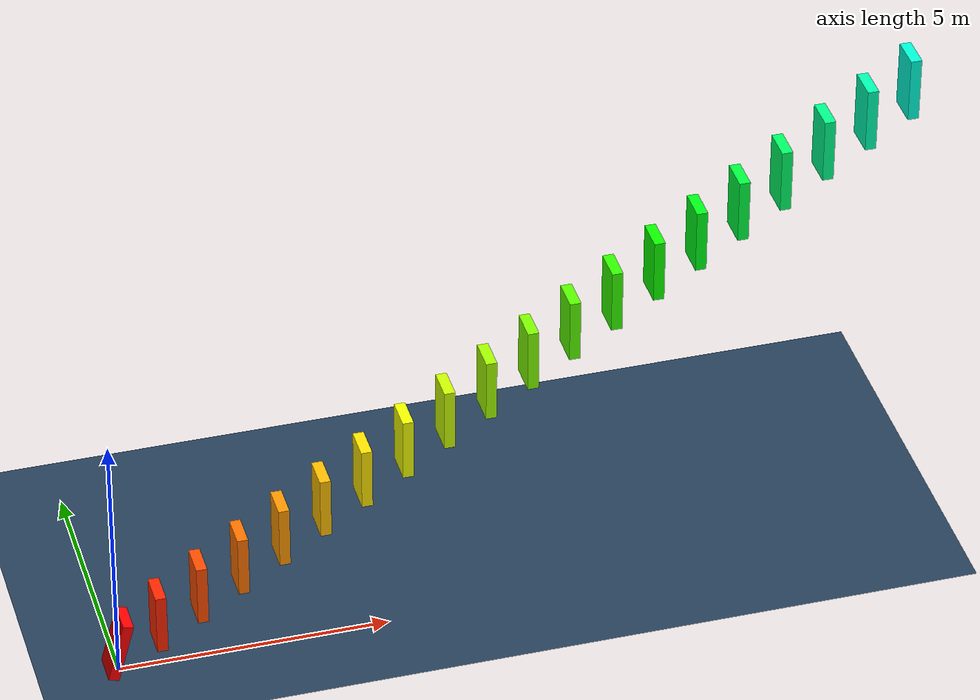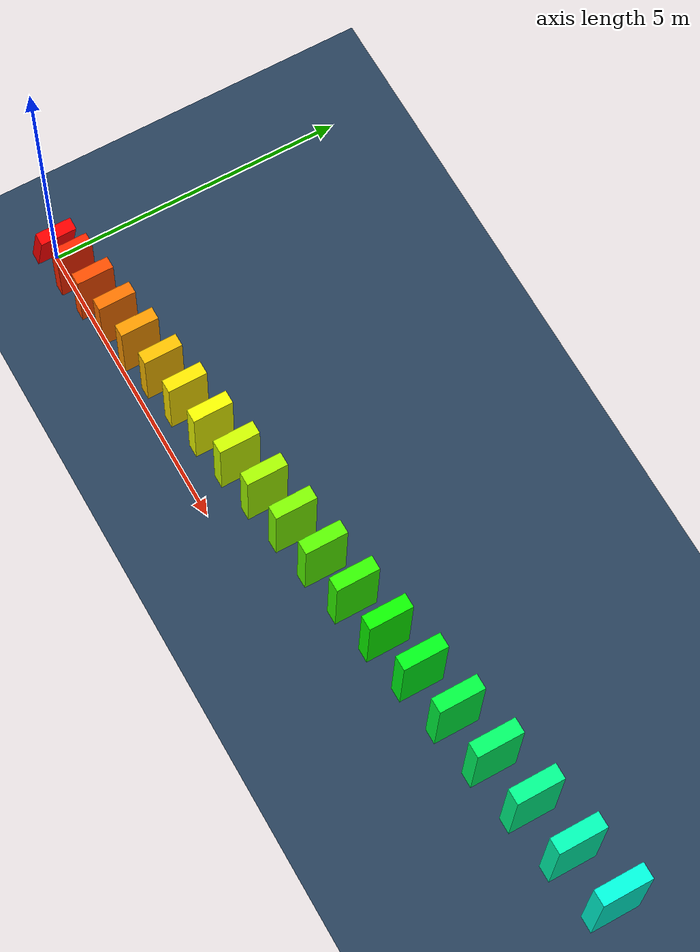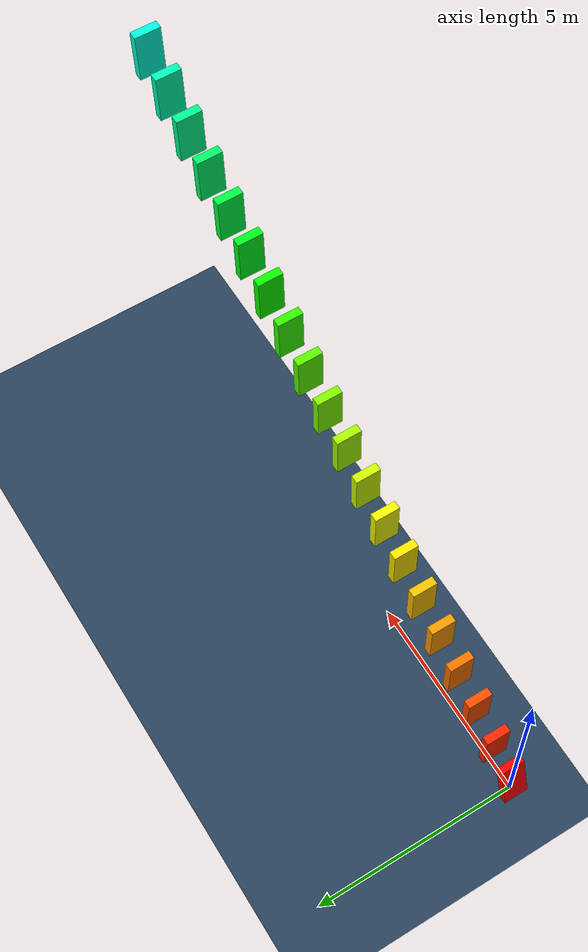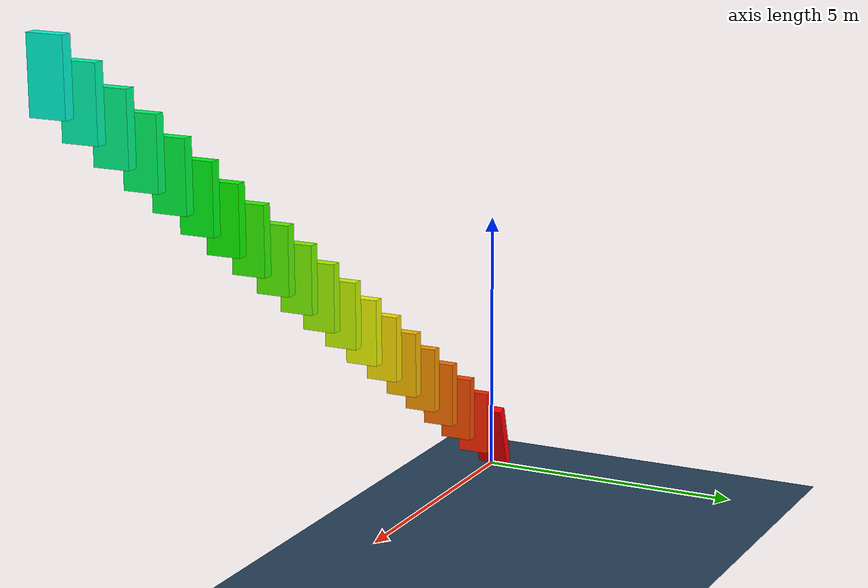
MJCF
<mujoco>
  <visual>
    <headlight diffuse="0.6 0.6 0.6" ambient="0.1 0.1 0.1" specular="0 0 0"/>
    <rgba haze="0.15 0.25 0.35 1"/>
    <global azimuth="120" elevation="-20"/>
  </visual>
  <asset>
    <texture type="skybox" builtin="gradient" rgb1="0.3 0.5 0.7" rgb2="0 0 0" width="512" height="3072"/>
    <texture type="2d" name="groundplane" builtin="checker" mark="edge" rgb1="0.2 0.3 0.4" rgb2="0.1 0.2 0.3" markrgb="0.8 0.8 0.8" width="300" height="300"/>
    <material name="groundplane" texture="groundplane" texuniform="true" texrepeat="5 5" reflectance="0.2"/>
  </asset>
  <worldbody>
    <light pos="0 0 1.5" dir="0 0 -1" directional="true"/>
    <geom name="floor" size="0 0 0.05" type="plane" material="groundplane"/>
    <body pos="0.0000 0.0000 0.6000" euler="0 15.0 0.0">
      <geom type="box" size="0.1000 0.3000 0.6000" rgba="1.000 0.000 0.000 1"/>
      <freejoint/>
    </body>
    <body pos="0.7600 0.0000 1.1000" euler="0 0.0 0.0">
      <geom type="box" size="0.1000 0.3000 0.6000" rgba="1.000 0.150 0.000 1"/>
      <freejoint/>
    </body>
    <body pos="1.5200 0.0000 1.6000" euler="0 0.0 0.0">
      <geom type="box" size="0.1000 0.3000 0.6000" rgba="1.000 0.300 0.000 1"/>
      <freejoint/>
    </body>
    <body pos="2.2800 0.0000 2.1000" euler="0 0.0 0.0">
      <geom type="box" size="0.1000 0.3000 0.6000" rgba="1.000 0.450 0.000 1"/>
      <freejoint/>
    </body>
    <body pos="3.0400 0.0000 2.6000" euler="0 0.0 0.0">
      <geom type="box" size="0.1000 0.3000 0.6000" rgba="1.000 0.600 0.000 1"/>
      <freejoint/>
    </body>
    <body pos="3.8000 0.0000 3.1000" euler="0 0.0 0.0">
      <geom type="box" size="0.1000 0.3000 0.6000" rgba="1.000 0.750 0.000 1"/>
      <freejoint/>
    </body>
    <body pos="4.5600 0.0000 3.6000" euler="0 0.0 0.0">
      <geom type="box" size="0.1000 0.3000 0.6000" rgba="1.000 0.900 0.000 1"/>
      <freejoint/>
    </body>
    <body pos="5.3200 0.0000 4.1000" euler="0 0.0 0.0">
      <geom type="box" size="0.1000 0.3000 0.6000" rgba="0.950 1.000 0.000 1"/>
      <freejoint/>
    </body>
    <body pos="6.0800 0.0000 4.6000" euler="0 0.0 0.0">
      <geom type="box" size="0.1000 0.3000 0.6000" rgba="0.800 1.000 0.000 1"/>
      <freejoint/>
    </body>
    <body pos="6.8400 0.0000 5.1000" euler="0 0.0 0.0">
      <geom type="box" size="0.1000 0.3000 0.6000" rgba="0.650 1.000 0.000 1"/>
      <freejoint/>
    </body>
    <body pos="7.6000 0.0000 5.6000" euler="0 0.0 0.0">
      <geom type="box" size="0.1000 0.3000 0.6000" rgba="0.500 1.000 0.000 1"/>
      <freejoint/>
    </body>
    <body pos="8.3600 0.0000 6.1000" euler="0 0.0 0.0">
      <geom type="box" size="0.1000 0.3000 0.6000" rgba="0.350 1.000 0.000 1"/>
      <freejoint/>
    </body>
    <body pos="9.1200 0.0000 6.6000" euler="0 0.0 0.0">
      <geom type="box" size="0.1000 0.3000 0.6000" rgba="0.200 1.000 0.000 1"/>
      <freejoint/>
    </body>
    <body pos="9.8800 0.0000 7.1000" euler="0 0.0 0.0">
      <geom type="box" size="0.1000 0.3000 0.6000" rgba="0.050 1.000 0.000 1"/>
      <freejoint/>
    </body>
    <body pos="10.6400 0.0000 7.6000" euler="0 0.0 0.0">
      <geom type="box" size="0.1000 0.3000 0.6000" rgba="0.000 1.000 0.100 1"/>
      <freejoint/>
    </body>
    <body pos="11.4000 0.0000 8.1000" euler="0 0.0 0.0">
      <geom type="box" size="0.1000 0.3000 0.6000" rgba="0.000 1.000 0.250 1"/>
      <freejoint/>
    </body>
    <body pos="12.1600 0.0000 8.6000" euler="0 0.0 0.0">
      <geom type="box" size="0.1000 0.3000 0.6000" rgba="0.000 1.000 0.400 1"/>
      <freejoint/>
    </body>
    <body pos="12.9200 0.0000 9.1000" euler="0 0.0 0.0">
      <geom type="box" size="0.1000 0.3000 0.6000" rgba="0.000 1.000 0.550 1"/>
      <freejoint/>
    </body>
    <body pos="13.6800 0.0000 9.6000" euler="0 0.0 0.0">
      <geom type="box" size="0.1000 0.3000 0.6000" rgba="0.000 1.000 0.700 1"/>
      <freejoint/>
    </body>
    <body pos="14.4400 0.0000 10.1000" euler="0 0.0 0.0">
      <geom type="box" size="0.1000 0.3000 0.6000" rgba="0.000 1.000 0.850 1"/>
      <freejoint/>
    </body>
  </worldbody>
</mujoco>
